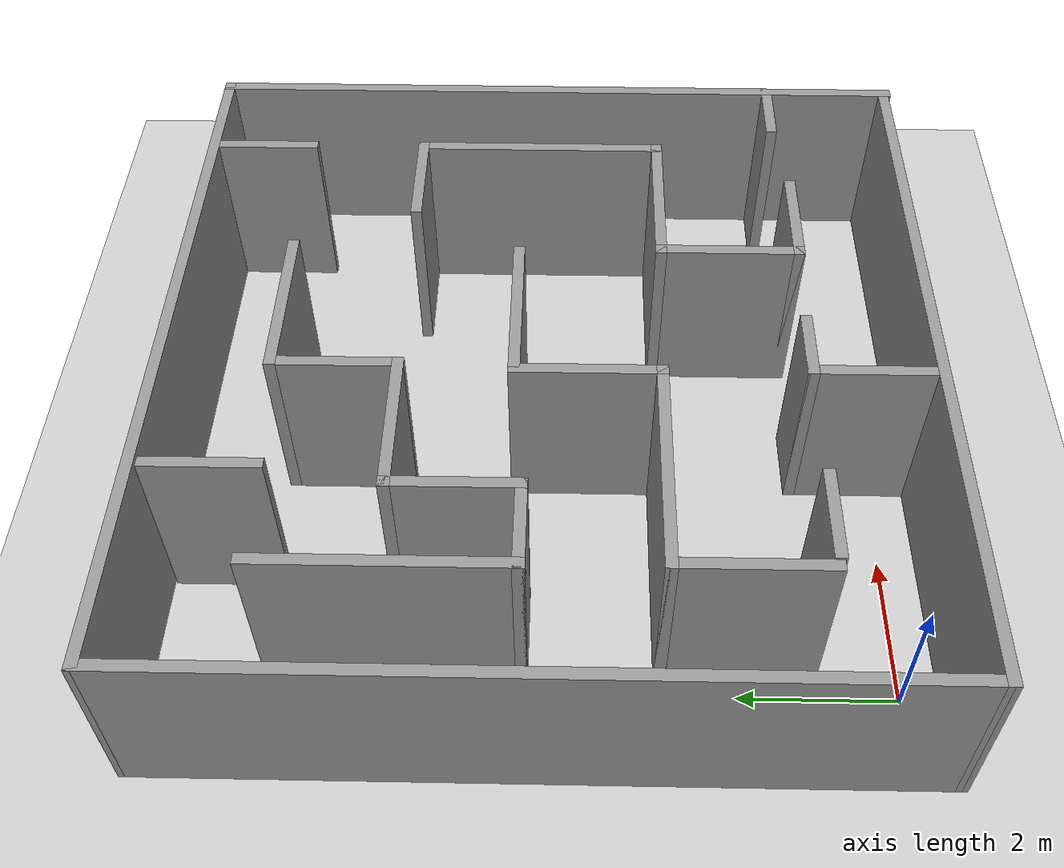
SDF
<sdf version="1.7">
 <world name="default">
  <light name="sun" type="directional">
   <pose>0 0 10 0 -0 0</pose>
   <diffuse>0.8 0.8 0.8 1</diffuse>
   <specular>0.2 0.2 0.2 1</specular>
   <attenuation>
    <range>1000</range>
    <constant>0.9</constant>
    <linear>0.01</linear>
    <quadratic>0.001</quadratic>
   </attenuation>
   <direction>-0.5 0.1 -0.9</direction>
   <spot><inner_angle>0</inner_angle><outer_angle>0</outer_angle><falloff>0</falloff></spot>
  </light>
  <model name="ground_plane">
   <static>1</static>
   <link name="link">
    <collision name="collision">
     <geometry><plane><normal>0 0 1</normal><size>100 100</size></plane></geometry>
     <surface><friction><ode><mu>100</mu><mu2>50</mu2></ode></friction></surface>
    </collision>
    <visual name="visual">
     <cast_shadows>0</cast_shadows>
     <geometry><plane><normal>0 0 1</normal><size>100 100</size></plane></geometry>
     <material>
      <script><uri>file://media/materials/scripts/gazebo.material</uri><name>Gazebo/Grey</name></script>
     </material>
    </visual>
   </link>
  </model>
  <gravity>0 0 -9.8</gravity>
  <magnetic_field>6e-06 2.3e-05 -4.2e-05</magnetic_field>
  <atmosphere type="adiabatic"/>
  <physics type="ode">
   <max_step_size>0.001</max_step_size>
   <real_time_factor>1</real_time_factor>
   <real_time_update_rate>1000</real_time_update_rate>
  </physics>
  <scene><ambient>0.4 0.4 0.4 1</ambient><background>0.7 0.7 0.7 1</background><shadows>1</shadows></scene>
  <spherical_coordinates>
   <surface_model>EARTH_WGS84</surface_model>
   <latitude_deg>0</latitude_deg>
   <longitude_deg>0</longitude_deg>
   <elevation>0</elevation>
   <heading_deg>0</heading_deg>
  </spherical_coordinates>
  <model name="maze_room">
   <pose>3.84635 4.32901 0 0 -0 1.57166</pose>
   <link name="Wall_0">
    <collision name="Wall_0_Collision">
     <geometry><box><size>10 0.15 2.5</size></box></geometry>
     <pose>0 0 1.25 0 -0 0</pose>
    </collision>
    <visual name="Wall_0_Visual">
     <pose>0 0 1.25 0 -0 0</pose>
     <geometry><box><size>10 0.15 2.5</size></box></geometry>
     <material>
      <script><uri>file://media/materials/scripts/gazebo.material</uri><name>Gazebo/Grey</name></script>
      <ambient>1 1 1 1</ambient>
     </material>
     <meta><layer>0</layer></meta>
    </visual>
    <pose>-2.8e-05 -4.92878 0 0 -0 0</pose>
   </link>
   <link name="Wall_10">
    <collision name="Wall_10_Collision">
     <geometry><box><size>1.25 0.15 2.5</size></box></geometry>
     <pose>0 0 1.25 0 -0 0</pose>
    </collision>
    <visual name="Wall_10_Visual">
     <pose>0 0 1.25 0 -0 0</pose>
     <geometry><box><size>1.25 0.15 2.5</size></box></geometry>
     <material>
      <script><uri>file://media/materials/scripts/gazebo.material</uri><name>Gazebo/Grey</name></script>
      <ambient>1 1 1 1</ambient>
     </material>
     <meta><layer>0</layer></meta>
    </visual>
    <pose>-3.28627 2.82175 0 0 -0 -1.5708</pose>
   </link>
   <link name="Wall_12">
    <collision name="Wall_12_Collision">
     <geometry><box><size>2 0.15 2.5</size></box></geometry>
     <pose>0 0 1.25 0 -0 0</pose>
    </collision>
    <visual name="Wall_12_Visual">
     <pose>0 0 1.25 0 -0 0</pose>
     <geometry><box><size>2 0.15 2.5</size></box></geometry>
     <material>
      <script><uri>file://media/materials/scripts/gazebo.material</uri><name>Gazebo/Grey</name></script>
      <ambient>1 1 1 1</ambient>
     </material>
     <meta><layer>0</layer></meta>
    </visual>
    <pose>-2.32609 3.53495 0 0 -0 0</pose>
   </link>
   <link name="Wall_13">
    <collision name="Wall_13_Collision">
     <geometry><box><size>3 0.15 2.5</size></box></geometry>
     <pose>0 0 1.25 0 -0 0</pose>
    </collision>
    <visual name="Wall_13_Visual">
     <pose>0 0 1.25 0 -0 0</pose>
     <geometry><box><size>3 0.15 2.5</size></box></geometry>
     <material>
      <script><uri>file://media/materials/scripts/gazebo.material</uri><name>Gazebo/Grey</name></script>
      <ambient>1 1 1 1</ambient>
     </material>
     <meta><layer>0</layer></meta>
    </visual>
    <pose>-1.40109 2.10995 0 0 -0 -1.5708</pose>
   </link>
   <link name="Wall_14">
    <collision name="Wall_14_Collision">
     <geometry><box><size>2 0.15 2.5</size></box></geometry>
     <pose>0 0 1.25 0 -0 0</pose>
    </collision>
    <visual name="Wall_14_Visual">
     <pose>0 0 1.25 0 -0 0</pose>
     <geometry><box><size>2 0.15 2.5</size></box></geometry>
     <material>
      <script><uri>file://media/materials/scripts/gazebo.material</uri><name>Gazebo/Grey</name></script>
      <ambient>1 1 1 1</ambient>
     </material>
     <meta><layer>0</layer></meta>
    </visual>
    <pose>-0.476086 0.684954 0 0 -0 0</pose>
   </link>
   <link name="Wall_15">
    <collision name="Wall_15_Collision">
     <geometry><box><size>2.25 0.15 2.5</size></box></geometry>
     <pose>0 0 1.25 0 -0 0</pose>
    </collision>
    <visual name="Wall_15_Visual">
     <pose>0 0 1.25 0 -0 0</pose>
     <geometry><box><size>2.25 0.15 2.5</size></box></geometry>
     <material>
      <script><uri>file://media/materials/scripts/gazebo.material</uri><name>Gazebo/Grey</name></script>
      <ambient>1 1 1 1</ambient>
     </material>
     <meta><layer>0</layer></meta>
    </visual>
    <pose>0.448914 -0.365046 0 0 -0 -1.5708</pose>
   </link>
   <link name="Wall_18">
    <collision name="Wall_18_Collision">
     <geometry><box><size>1.5 0.15 2.5</size></box></geometry>
     <pose>0 0 1.25 0 -0 0</pose>
    </collision>
    <visual name="Wall_18_Visual">
     <pose>0 0 1.25 0 -0 0</pose>
     <geometry><box><size>1.5 0.15 2.5</size></box></geometry>
     <material>
      <script><uri>file://media/materials/scripts/gazebo.material</uri><name>Gazebo/Grey</name></script>
      <ambient>1 1 1 1</ambient>
     </material>
     <meta><layer>0</layer></meta>
    </visual>
    <pose>-3.30449 -2.1574 0 0 -0 1.5708</pose>
   </link>
   <link name="Wall_20">
    <collision name="Wall_20_Collision">
     <geometry><box><size>2 0.15 2.5</size></box></geometry>
     <pose>0 0 1.25 0 -0 0</pose>
    </collision>
    <visual name="Wall_20_Visual">
     <pose>0 0 1.25 0 -0 0</pose>
     <geometry><box><size>2 0.15 2.5</size></box></geometry>
     <material>
      <script><uri>file://media/materials/scripts/gazebo.material</uri><name>Gazebo/Grey</name></script>
      <ambient>1 1 1 1</ambient>
     </material>
     <meta><layer>0</layer></meta>
    </visual>
    <pose>-2.37949 -1.4824 0 0 -0 0</pose>
   </link>
   <link name="Wall_21">
    <collision name="Wall_21_Collision">
     <geometry><box><size>2.25 0.15 2.5</size></box></geometry>
     <pose>0 0 1.25 0 -0 0</pose>
    </collision>
    <visual name="Wall_21_Visual">
     <pose>0 0 1.25 0 -0 0</pose>
     <geometry><box><size>2.25 0.15 2.5</size></box></geometry>
     <material>
      <script><uri>file://media/materials/scripts/gazebo.material</uri><name>Gazebo/Grey</name></script>
      <ambient>1 1 1 1</ambient>
     </material>
     <meta><layer>0</layer></meta>
    </visual>
    <pose>-1.45449 -2.5324 0 0 -0 -1.5708</pose>
   </link>
   <link name="Wall_22">
    <collision name="Wall_22_Collision">
     <geometry><box><size>3.5 0.15 2.5</size></box></geometry>
     <pose>0 0 1.25 0 -0 0</pose>
    </collision>
    <visual name="Wall_22_Visual">
     <pose>0 0 1.25 0 -0 0</pose>
     <geometry><box><size>3.5 0.15 2.5</size></box></geometry>
     <material>
      <script><uri>file://media/materials/scripts/gazebo.material</uri><name>Gazebo/Grey</name></script>
      <ambient>1 1 1 1</ambient>
     </material>
     <meta><layer>0</layer></meta>
    </visual>
    <pose>0.220512 -3.5824 0 0 -0 0</pose>
   </link>
   <link name="Wall_23">
    <collision name="Wall_23_Collision">
     <geometry><box><size>1.5 0.15 2.5</size></box></geometry>
     <pose>0 0 1.25 0 -0 0</pose>
    </collision>
    <visual name="Wall_23_Visual">
     <pose>0 0 1.25 0 -0 0</pose>
     <geometry><box><size>1.5 0.15 2.5</size></box></geometry>
     <material>
      <script><uri>file://media/materials/scripts/gazebo.material</uri><name>Gazebo/Grey</name></script>
      <ambient>1 1 1 1</ambient>
     </material>
     <meta><layer>0</layer></meta>
    </visual>
    <pose>1.89551 -2.9074 0 0 -0 1.5708</pose>
   </link>
   <link name="Wall_25">
    <collision name="Wall_25_Collision">
     <geometry><box><size>2.25 0.15 2.5</size></box></geometry>
     <pose>0 0 1.25 0 -0 0</pose>
    </collision>
    <visual name="Wall_25_Visual">
     <pose>0 0 1.25 0 -0 0</pose>
     <geometry><box><size>2.25 0.15 2.5</size></box></geometry>
     <material>
      <script><uri>file://media/materials/scripts/gazebo.material</uri><name>Gazebo/Grey</name></script>
      <ambient>1 1 1 1</ambient>
     </material>
     <meta><layer>0</layer></meta>
    </visual>
    <pose>3.49551 -0.432402 0 0 -0 1.5708</pose>
   </link>
   <link name="Wall_26">
    <collision name="Wall_26_Collision">
     <geometry><box><size>1.75 0.15 2.5</size></box></geometry>
     <pose>0 0 1.25 0 -0 0</pose>
    </collision>
    <visual name="Wall_26_Visual">
     <pose>0 0 1.25 0 -0 0</pose>
     <geometry><box><size>1.75 0.15 2.5</size></box></geometry>
     <material>
      <script><uri>file://media/materials/scripts/gazebo.material</uri><name>Gazebo/Grey</name></script>
      <ambient>1 1 1 1</ambient>
     </material>
     <meta><layer>0</layer></meta>
    </visual>
    <pose>2.69551 0.617598 0 0 -0 3.14159</pose>
   </link>
   <link name="Wall_27">
    <collision name="Wall_27_Collision">
     <geometry><box><size>2 0.15 2.5</size></box></geometry>
     <pose>0 0 1.25 0 -0 0</pose>
    </collision>
    <visual name="Wall_27_Visual">
     <pose>0 0 1.25 0 -0 0</pose>
     <geometry><box><size>2 0.15 2.5</size></box></geometry>
     <material>
      <script><uri>file://media/materials/scripts/gazebo.material</uri><name>Gazebo/Grey</name></script>
      <ambient>1 1 1 1</ambient>
     </material>
     <meta><layer>0</layer></meta>
    </visual>
    <pose>1.89551 1.5426 0 0 -0 1.5708</pose>
   </link>
   <link name="Wall_28">
    <collision name="Wall_28_Collision">
     <geometry><box><size>1.75 0.15 2.5</size></box></geometry>
     <pose>0 0 1.25 0 -0 0</pose>
    </collision>
    <visual name="Wall_28_Visual">
     <pose>0 0 1.25 0 -0 0</pose>
     <geometry><box><size>1.75 0.15 2.5</size></box></geometry>
     <material>
      <script><uri>file://media/materials/scripts/gazebo.material</uri><name>Gazebo/Grey</name></script>
      <ambient>1 1 1 1</ambient>
     </material>
     <meta><layer>0</layer></meta>
    </visual>
    <pose>1.09551 2.4676 0 0 -0 3.14159</pose>
   </link>
   <link name="Wall_29">
    <collision name="Wall_29_Collision">
     <geometry><box><size>1.25 0.15 2.5</size></box></geometry>
     <pose>0 0 1.25 0 -0 0</pose>
    </collision>
    <visual name="Wall_29_Visual">
     <pose>0 0 1.25 0 -0 0</pose>
     <geometry><box><size>1.25 0.15 2.5</size></box></geometry>
     <material>
      <script><uri>file://media/materials/scripts/gazebo.material</uri><name>Gazebo/Grey</name></script>
      <ambient>1 1 1 1</ambient>
     </material>
     <meta><layer>0</layer></meta>
    </visual>
    <pose>0.295512 3.0176 0 0 -0 1.5708</pose>
   </link>
   <link name="Wall_30">
    <collision name="Wall_30_Collision">
     <geometry><box><size>3.25 0.15 2.5</size></box></geometry>
     <pose>0 0 1.25 0 -0 0</pose>
    </collision>
    <visual name="Wall_30_Visual">
     <pose>0 0 1.25 0 -0 0</pose>
     <geometry><box><size>3.25 0.15 2.5</size></box></geometry>
     <material>
      <script><uri>file://media/materials/scripts/gazebo.material</uri><name>Gazebo/Grey</name></script>
      <ambient>1 1 1 1</ambient>
     </material>
     <meta><layer>0</layer></meta>
    </visual>
    <pose>1.84551 3.5676 0 0 -0 0</pose>
   </link>
   <link name="Wall_32">
    <collision name="Wall_32_Collision">
     <geometry><box><size>1.5 0.15 2.5</size></box></geometry>
     <pose>0 0 1.25 0 -0 0</pose>
    </collision>
    <visual name="Wall_32_Visual">
     <pose>0 0 1.25 0 -0 0</pose>
     <geometry><box><size>1.5 0.15 2.5</size></box></geometry>
     <material>
      <script><uri>file://media/materials/scripts/gazebo.material</uri><name>Gazebo/Grey</name></script>
      <ambient>1 1 1 1</ambient>
     </material>
     <meta><layer>0</layer></meta>
    </visual>
    <pose>4.17824 -3.57116 0 0 -0 0</pose>
   </link>
   <link name="Wall_34">
    <collision name="Wall_34_Collision">
     <geometry><box><size>1 0.15 2.5</size></box></geometry>
     <pose>0 0 1.25 0 -0 0</pose>
    </collision>
    <visual name="Wall_34_Visual">
     <pose>0 0 1.25 0 -0 0</pose>
     <geometry><box><size>1 0.15 2.5</size></box></geometry>
     <material>
      <script><uri>file://media/materials/scripts/gazebo.material</uri><name>Gazebo/Grey</name></script>
      <ambient>1 1 1 1</ambient>
     </material>
     <meta><layer>0</layer></meta>
    </visual>
    <pose>-3.14555 -4.48295 0 0 -0 1.5708</pose>
   </link>
   <link name="Wall_36">
    <collision name="Wall_36_Collision">
     <geometry><box><size>1.75 0.15 2.5</size></box></geometry>
     <pose>0 0 1.25 0 -0 0</pose>
    </collision>
    <visual name="Wall_36_Visual">
     <pose>0 0 1.25 0 -0 0</pose>
     <geometry><box><size>1.75 0.15 2.5</size></box></geometry>
     <material>
      <script><uri>file://media/materials/scripts/gazebo.material</uri><name>Gazebo/Grey</name></script>
      <ambient>1 1 1 1</ambient>
     </material>
     <meta><layer>0</layer></meta>
    </visual>
    <pose>-4.06931 0.650296 0 0 -0 0</pose>
   </link>
   <link name="Wall_37">
    <collision name="Wall_37_Collision">
     <geometry><box><size>1 0.15 2.5</size></box></geometry>
     <pose>0 0 1.25 0 -0 0</pose>
    </collision>
    <visual name="Wall_37_Visual">
     <pose>0 0 1.25 0 -0 0</pose>
     <geometry><box><size>1 0.15 2.5</size></box></geometry>
     <material>
      <script><uri>file://media/materials/scripts/gazebo.material</uri><name>Gazebo/Grey</name></script>
      <ambient>1 1 1 1</ambient>
     </material>
     <meta><layer>0</layer></meta>
    </visual>
    <pose>-3.26931 0.225296 0 0 -0 -1.5708</pose>
   </link>
   <link name="Wall_39">
    <collision name="Wall_39_Collision">
     <geometry><box><size>1.5 0.15 2.5</size></box></geometry>
     <pose>0 0 1.25 0 -0 0</pose>
    </collision>
    <visual name="Wall_39_Visual">
     <pose>0 0 1.25 0 -0 0</pose>
     <geometry><box><size>1.5 0.15 2.5</size></box></geometry>
     <material>
      <script><uri>file://media/materials/scripts/gazebo.material</uri><name>Gazebo/Grey</name></script>
      <ambient>1 1 1 1</ambient>
     </material>
     <meta><layer>0</layer></meta>
    </visual>
    <pose>4.0727 2.23334 0 0 -0 0</pose>
   </link>
   <link name="Wall_4">
    <collision name="Wall_4_Collision">
     <geometry><box><size>9.97232 0.15 2.5</size></box></geometry>
     <pose>0 0 1.25 0 -0 0</pose>
    </collision>
    <visual name="Wall_4_Visual">
     <pose>0 0 1.25 0 -0 0</pose>
     <geometry><box><size>9.97232 0.15 2.5</size></box></geometry>
     <material>
      <script><uri>file://media/materials/scripts/gazebo.material</uri><name>Gazebo/Grey</name></script>
      <ambient>1 1 1 1</ambient>
     </material>
     <meta><layer>0</layer></meta>
    </visual>
    <pose>-4.88985 0.017561 0 0 -0 1.5708</pose>
   </link>
   <link name="Wall_6">
    <collision name="Wall_6_Collision">
     <geometry><box><size>10 0.15 2.5</size></box></geometry>
     <pose>0 0 1.25 0 -0 0</pose>
    </collision>
    <visual name="Wall_6_Visual">
     <pose>0 0 1.25 0 -0 0</pose>
     <geometry><box><size>10 0.15 2.5</size></box></geometry>
     <material>
      <script><uri>file://media/materials/scripts/gazebo.material</uri><name>Gazebo/Grey</name></script>
      <ambient>1 1 1 1</ambient>
     </material>
     <meta><layer>0</layer></meta>
    </visual>
    <pose>4.92497 -0.003777 0 0 -0 1.5708</pose>
   </link>
   <link name="Wall_8">
    <collision name="Wall_8_Collision">
     <geometry><box><size>9.96482 0.15 2.5</size></box></geometry>
     <pose>0 0 1.25 0 -0 0</pose>
    </collision>
    <visual name="Wall_8_Visual">
     <pose>0 0 1.25 0 -0 0</pose>
     <geometry><box><size>9.96482 0.15 2.5</size></box></geometry>
     <material>
      <script><uri>file://media/materials/scripts/gazebo.material</uri><name>Gazebo/Grey</name></script>
      <ambient>1 1 1 1</ambient>
     </material>
     <meta><layer>0</layer></meta>
    </visual>
    <pose>0.017561 4.92497 0 0 -0 -0.000764</pose>
   </link>
   <static>1</static>
  </model>
  <model name="RoboCup SPL Ball">
   <static>0</static>
   <link name="ball">
    <inertial>
     <mass>0.0056</mass>
     <inertia>
      <ixx>2.37e-06</ixx>
      <iyy>2.37e-06</iyy>
      <izz>2.37e-06</izz>
      <ixy>0</ixy>
      <ixz>0</ixz>
      <iyz>0</iyz>
     </inertia>
    </inertial>
    <collision name="collision"><geometry><sphere><radius>0.000940945</radius></sphere></geometry></collision>
    <visual name="visual">
     <geometry><sphere><radius>0.000940945</radius></sphere></geometry>
     <material>
      <script><uri>file://media/materials/scripts/gazebo.material</uri><name>Gazebo/RedBright</name></script>
     </material>
    </visual>
   </link>
   <pose>3.69957 3.92788 0.000941 -0.042115 -0.004784 0.00012</pose>
  </model>
  <audio><device>default</device></audio>
  <model name="mbot">
   <link name="base_footprint">
    <inertial>
     <pose>0.0125 0 0.103563 0 -0 0</pose>
     <mass>1.6</mass>
     <inertia>
      <ixx>0.0372405</ixx>
      <ixy>0</ixy>
      <ixz>-0.00148875</ixz>
      <iyy>0.0539505</iyy>
      <iyz>0</iyz>
      <izz>0.0567678</izz>
     </inertia>
    </inertial>
    <collision name="base_footprint_fixed_joint_lump__base_link_collision">
     <pose>0 0 0.118 0 -0 0</pose>
     <geometry><cylinder><length>0.16</length><radius>0.2</radius></cylinder></geometry>
    </collision>
    <collision name="base_footprint_fixed_joint_lump__back_caster_link_collision_1">
     <pose>0.18 0 0.019 0 -0 0</pose>
     <geometry><sphere><radius>0.019</radius></sphere></geometry>
    </collision>
    <collision name="base_footprint_fixed_joint_lump__camera_link_collision_2">
     <pose>0.2 0 0.178 0 -0 0</pose>
     <geometry><box><size>0.01 0.04 0.04</size></box></geometry>
    </collision>
    <collision name="base_footprint_fixed_joint_lump__front_caster_link_collision_3">
     <pose>-0.18 0 0.019 0 -0 0</pose>
     <geometry><sphere><radius>0.019</radius></sphere></geometry>
    </collision>
    <collision name="base_footprint_fixed_joint_lump__laser_link_collision_4">
     <pose>0 0 0.223 0 -0 0</pose>
     <geometry><cylinder><length>0.06</length><radius>0.05</radius></cylinder></geometry>
    </collision>
    <visual name="base_footprint_visual"><geometry><box><size>0.001 0.001 0.001</size></box></geometry></visual>
    <visual name="base_footprint_fixed_joint_lump__base_link_visual_1">
     <pose>0 0 0.118 0 -0 0</pose>
     <geometry><cylinder><length>0.16</length><radius>0.2</radius></cylinder></geometry>
     <material>
      <script><name>Gazebo/Blue</name><uri>file://media/materials/scripts/gazebo.material</uri></script>
     </material>
    </visual>
    <visual name="base_footprint_fixed_joint_lump__back_caster_link_visual_2">
     <pose>0.18 0 0.019 0 -0 0</pose>
     <geometry><sphere><radius>0.019</radius></sphere></geometry>
     <material>
      <script><name>Gazebo/Black</name><uri>file://media/materials/scripts/gazebo.material</uri></script>
     </material>
    </visual>
    <visual name="base_footprint_fixed_joint_lump__camera_link_visual_3">
     <pose>0.2 0 0.178 0 -0 0</pose>
     <geometry><box><size>0.01 0.04 0.04</size></box></geometry>
     <material>
      <script><name>Gazebo/Black</name><uri>file://media/materials/scripts/gazebo.material</uri></script>
     </material>
    </visual>
    <visual name="base_footprint_fixed_joint_lump__front_caster_link_visual_4">
     <pose>-0.18 0 0.019 0 -0 0</pose>
     <geometry><sphere><radius>0.019</radius></sphere></geometry>
     <material>
      <script><name>Gazebo/Black</name><uri>file://media/materials/scripts/gazebo.material</uri></script>
     </material>
    </visual>
    <visual name="base_footprint_fixed_joint_lump__laser_link_visual_5">
     <pose>0 0 0.223 0 -0 0</pose>
     <geometry><cylinder><length>0.05</length><radius>0.05</radius></cylinder></geometry>
     <material>
      <script><name>Gazebo/Black</name><uri>file://media/materials/scripts/gazebo.material</uri></script>
     </material>
    </visual>
    <sensor name="camera_node" type="camera">
     <update_rate>30</update_rate>
     <camera name="head">
      <horizontal_fov>1.39626</horizontal_fov>
      <image><width>1280</width><height>720</height><format>R8G8B8</format></image>
      <clip><near>0.02</near><far>300</far></clip>
      <noise><type>gaussian</type><mean>0</mean><stddev>0.007</stddev></noise>
     </camera>
     <plugin name="gazebo_camera" filename="libgazebo_ros_camera.so">
      <ros><remapping>~/image_raw:=image_raw</remapping><remapping>~/camera_info:=camera_info</remapping></ros>
      <camera_name>camera</camera_name>
      <frame_name>camera_link</frame_name>
      <hack_baseline>0.2</hack_baseline>
     </plugin>
     <pose>0.2 0 0.178 0 -0 0</pose>
    </sensor>
    <sensor name="rplidar" type="ray">
     <visualize>1</visualize>
     <update_rate>20</update_rate>
     <ray>
      <scan>
       <horizontal>
        <samples>360</samples>
        <resolution>1</resolution>
        <min_angle>-3.14</min_angle>
        <max_angle>3.14</max_angle>
       </horizontal>
       <vertical><samples>1</samples><min_angle>0</min_angle><max_angle>0</max_angle></vertical>
      </scan>
      <range><min>0.15</min><max>12</max><resolution>0.01</resolution></range>
      <noise><type>gaussian</type><mean>0</mean><stddev>0.01</stddev></noise>
     </ray>
     <plugin name="gazebo_rplidar" filename="libgazebo_ros_ray_sensor.so">
      <ros><namespace>/</namespace><remapping>~/out:=scan</remapping></ros>
      <output_type>sensor_msgs/LaserScan</output_type>
     </plugin>
     <pose>0 0 0.223 0 -0 0</pose>
    </sensor>
   </link>
   <joint name="left_wheel_joint" type="revolute">
    <pose relative_to="base_footprint">0 0.19 0.068 0 -0 0</pose>
    <parent>base_footprint</parent>
    <child>left_wheel_link</child>
    <axis>
     <xyz>0 1 0</xyz>
     <limit><lower>-1e+16</lower><upper>1e+16</upper></limit>
     <dynamics><spring_reference>0</spring_reference><spring_stiffness>0</spring_stiffness></dynamics>
    </axis>
   </joint>
   <link name="left_wheel_link">
    <pose relative_to="left_wheel_joint">0 0 0 0 -0 0</pose>
    <inertial>
     <mass>0.2</mass>
     <inertia>
      <ixx>0.0002408</ixx>
      <ixy>0</ixy>
      <ixz>0</ixz>
      <iyy>0.0002408</iyy>
      <iyz>0</iyz>
      <izz>0.0004624</izz>
     </inertia>
    </inertial>
    <collision name="left_wheel_link_collision">
     <pose>0 0 0 1.5708 -0 0</pose>
     <geometry><cylinder><length>0.024</length><radius>0.068</radius></cylinder></geometry>
     <surface><friction><ode><mu>100000</mu><mu2>100000</mu2></ode></friction></surface>
    </collision>
    <visual name="left_wheel_link_visual">
     <pose>0 0 0 1.5708 -0 0</pose>
     <geometry><cylinder><length>0.024</length><radius>0.068</radius></cylinder></geometry>
     <material>
      <script><name>Gazebo/Gray</name><uri>file://media/materials/scripts/gazebo.material</uri></script>
     </material>
    </visual>
   </link>
   <joint name="right_wheel_joint" type="revolute">
    <pose relative_to="base_footprint">0 -0.19 0.068 0 -0 0</pose>
    <parent>base_footprint</parent>
    <child>right_wheel_link</child>
    <axis>
     <xyz>0 1 0</xyz>
     <limit><lower>-1e+16</lower><upper>1e+16</upper></limit>
     <dynamics><spring_reference>0</spring_reference><spring_stiffness>0</spring_stiffness></dynamics>
    </axis>
   </joint>
   <link name="right_wheel_link">
    <pose relative_to="right_wheel_joint">0 0 0 0 -0 0</pose>
    <inertial>
     <mass>0.2</mass>
     <inertia>
      <ixx>0.0002408</ixx>
      <ixy>0</ixy>
      <ixz>0</ixz>
      <iyy>0.0002408</iyy>
      <iyz>0</iyz>
      <izz>0.0004624</izz>
     </inertia>
    </inertial>
    <collision name="right_wheel_link_collision">
     <pose>0 0 0 1.5708 -0 0</pose>
     <geometry><cylinder><length>0.024</length><radius>0.068</radius></cylinder></geometry>
     <surface><friction><ode><mu>100000</mu><mu2>100000</mu2></ode></friction></surface>
    </collision>
    <visual name="right_wheel_link_visual">
     <pose>0 0 0 1.5708 -0 0</pose>
     <geometry><cylinder><length>0.024</length><radius>0.068</radius></cylinder></geometry>
     <material>
      <script><name>Gazebo/Gray</name><uri>file://media/materials/scripts/gazebo.material</uri></script>
     </material>
    </visual>
   </link>
   <static>0</static>
   <plugin name="differential_drive_controller" filename="libgazebo_ros_diff_drive.so">
    <update_rate>30</update_rate>
    <left_joint>left_wheel_joint</left_joint>
    <right_joint>right_wheel_joint</right_joint>
    <wheel_separation>0.38</wheel_separation>
    <wheel_diameter>0.136</wheel_diameter>
    <max_wheel_torque>20</max_wheel_torque>
    <max_wheel_acceleration>1.0</max_wheel_acceleration>
    <command_topic>cmd_vel</command_topic>
    <publish_odom>1</publish_odom>
    <publish_odom_tf>1</publish_odom_tf>
    <publish_wheel_tf>1</publish_wheel_tf>
    <odometry_topic>odom</odometry_topic>
    <odometry_frame>odom</odometry_frame>
    <robot_base_frame>base_footprint</robot_base_frame>
    <odometry_source>1</odometry_source>
   </plugin>
   <pose>-0.007995 -0.000382 0 -0 1e-06 -0.000852</pose>
  </model>
 </world>
</sdf>
